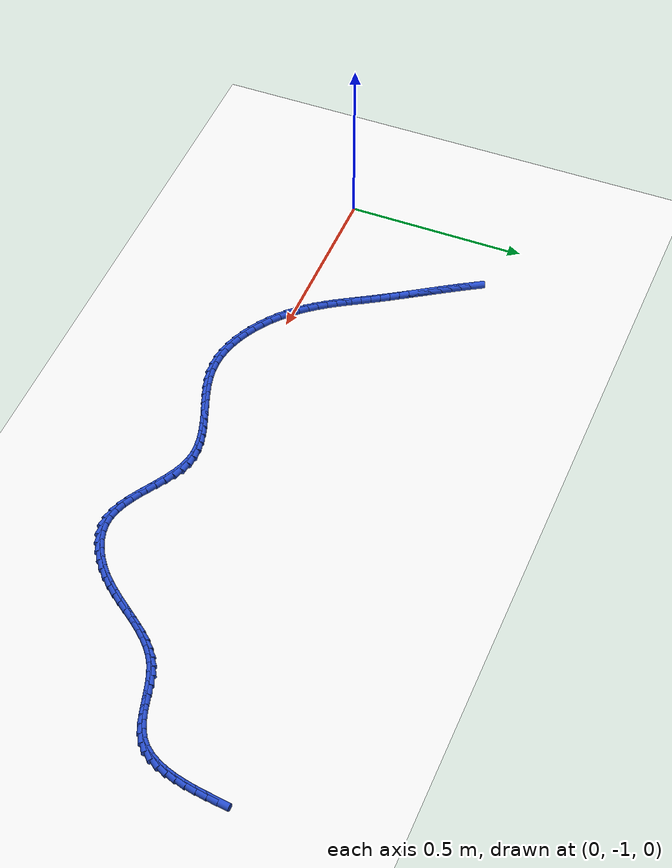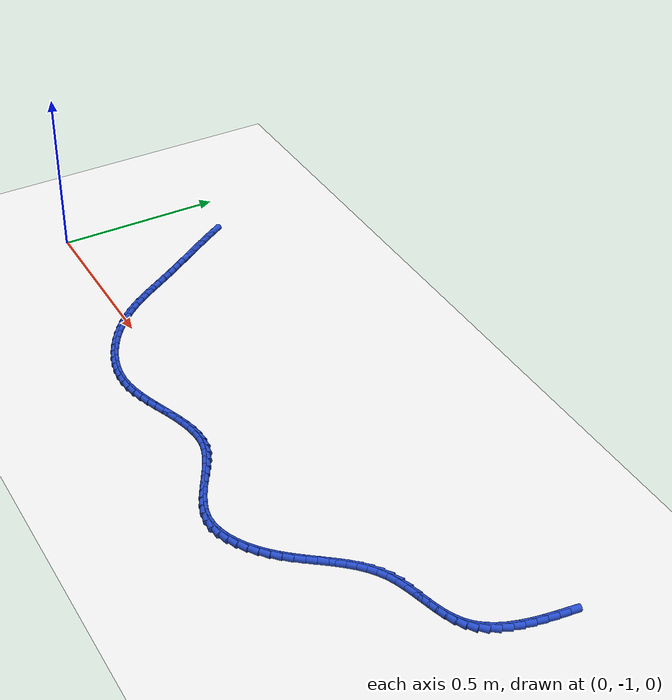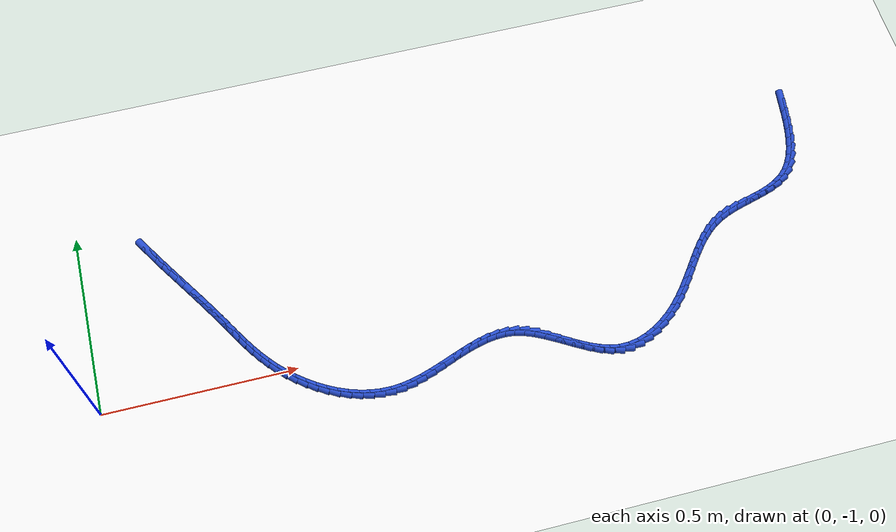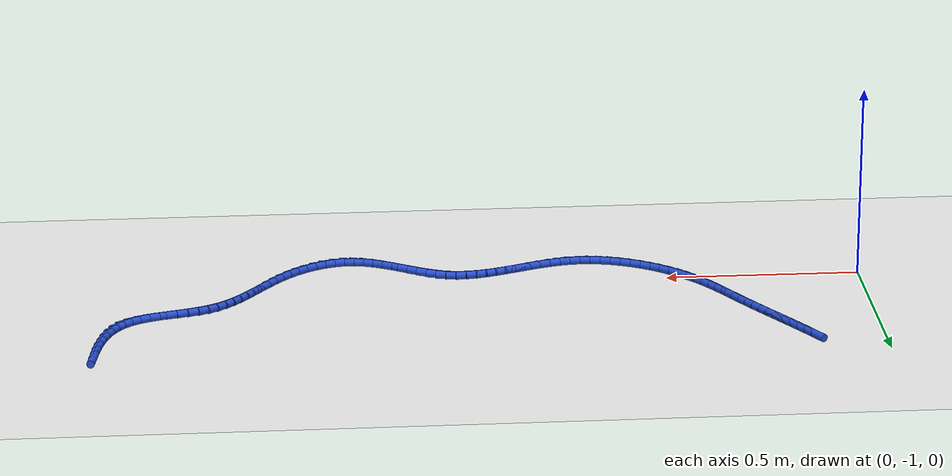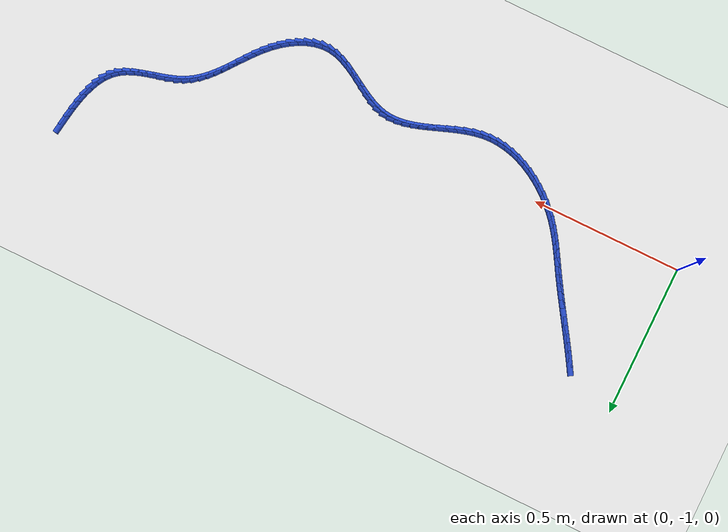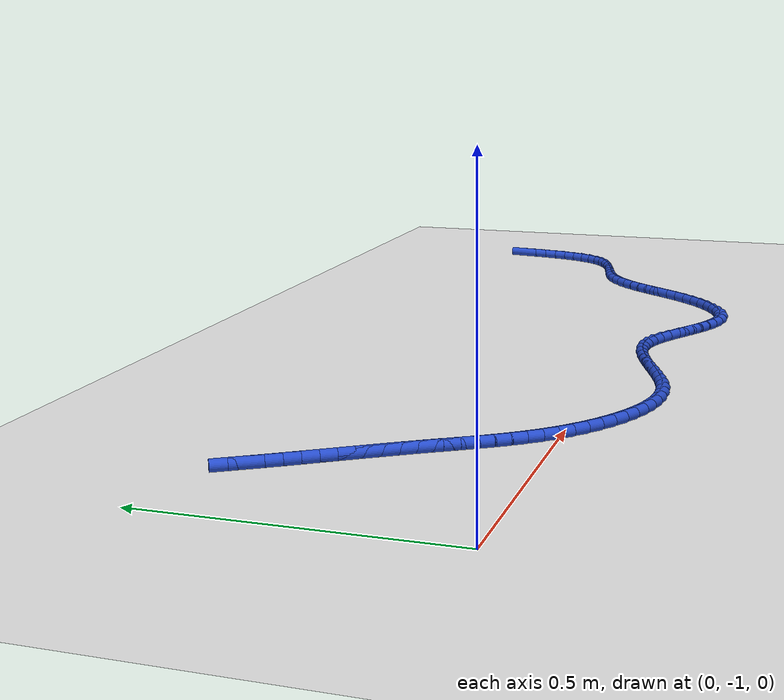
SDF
<sdf version="1.6">
 <world name="default">
  <model name="ground_plane">
   <static>1</static>
   <link name="link">
    <collision name="collision">
     <geometry><plane><normal>0 0 1</normal><size>100 100</size></plane></geometry>
     <surface><friction><ode><mu>100</mu><mu2>50</mu2></ode></friction></surface>
    </collision>
    <visual name="visual">
     <cast_shadows>0</cast_shadows>
     <geometry><plane><normal>0 0 1</normal><size>100 100</size></plane></geometry>
     <material>
      <script><uri>file://media/materials/scripts/gazebo.material</uri><name>Gazebo/WhiteGlow</name></script>
     </material>
    </visual>
   </link>
  </model>
  <model name="line">
   <link name="link_150">
    <pose>1.96478821360444 -0.5637196910142563 0.01 0 1.57 1.4319226730237735</pose>
    <collision name="collision">
     <geometry><cylinder><radius>0.01</radius><length>0.08</length></cylinder></geometry>
    </collision>
    <visual name="visual">
     <material>
      <script><name>Gazebo/Blue</name><uri>file://media/materials/scripts/gazebo.material</uri></script>
     </material>
     <geometry><cylinder><radius>0.01</radius><length>0.08</length></cylinder></geometry>
    </visual>
   </link>
   <link name="link_151">
    <pose>1.9607628551458993 -0.5925188726792422 0.01 0 1.57 1.4066659896583082</pose>
    <collision name="collision">
     <geometry><cylinder><radius>0.01</radius><length>0.08</length></cylinder></geometry>
    </collision>
    <visual name="visual">
     <material>
      <script><name>Gazebo/Blue</name><uri>file://media/materials/scripts/gazebo.material</uri></script>
     </material>
     <geometry><cylinder><radius>0.01</radius><length>0.08</length></cylinder></geometry>
    </visual>
   </link>
   <link name="link_152">
    <pose>1.955986293143293 -0.6213593252901358 0.01 0 1.57 1.368322378653813</pose>
    <collision name="collision">
     <geometry><cylinder><radius>0.01</radius><length>0.08</length></cylinder></geometry>
    </collision>
    <visual name="visual">
     <material>
      <script><name>Gazebo/Blue</name><uri>file://media/materials/scripts/gazebo.material</uri></script>
     </material>
     <geometry><cylinder><radius>0.01</radius><length>0.08</length></cylinder></geometry>
    </visual>
   </link>
   <link name="link_153">
    <pose>1.9501506916083324 -0.64978588550178 0.01 0 1.57 1.3151531855222545</pose>
    <collision name="collision">
     <geometry><cylinder><radius>0.01</radius><length>0.08</length></cylinder></geometry>
    </collision>
    <visual name="visual">
     <material>
      <script><name>Gazebo/Blue</name><uri>file://media/materials/scripts/gazebo.material</uri></script>
     </material>
     <geometry><cylinder><radius>0.01</radius><length>0.08</length></cylinder></geometry>
    </visual>
   </link>
   <link name="link_154">
    <pose>1.9429482145527304 -0.677343389969018 0.01 0 1.57 1.2444980330727031</pose>
    <collision name="collision">
     <geometry><cylinder><radius>0.01</radius><length>0.08</length></cylinder></geometry>
    </collision>
    <visual name="visual">
     <material>
      <script><name>Gazebo/Blue</name><uri>file://media/materials/scripts/gazebo.material</uri></script>
     </material>
     <geometry><cylinder><radius>0.01</radius><length>0.08</length></cylinder></geometry>
    </visual>
   </link>
   <link name="link_155">
    <pose>1.9340710259881968 -0.7035766753466927 0.01 0 1.57 1.1528679368372194</pose>
    <collision name="collision">
     <geometry><cylinder><radius>0.01</radius><length>0.08</length></cylinder></geometry>
    </collision>
    <visual name="visual">
     <material>
      <script><name>Gazebo/Blue</name><uri>file://media/materials/scripts/gazebo.material</uri></script>
     </material>
     <geometry><cylinder><radius>0.01</radius><length>0.08</length></cylinder></geometry>
    </visual>
   </link>
   <link name="link_156">
    <pose>1.9232112899264433 -0.7280305782896479 0.01 0 1.57 1.0364045912186703</pose>
    <collision name="collision">
     <geometry><cylinder><radius>0.01</radius><length>0.08</length></cylinder></geometry>
    </collision>
    <visual name="visual">
     <material>
      <script><name>Gazebo/Blue</name><uri>file://media/materials/scripts/gazebo.material</uri></script>
     </material>
     <geometry><cylinder><radius>0.01</radius><length>0.08</length></cylinder></geometry>
    </visual>
   </link>
   <link name="link_157">
    <pose>1.9100611703791817 -0.750249935452725 0.01 0 1.57 0.8921765646227691</pose>
    <collision name="collision">
     <geometry><cylinder><radius>0.01</radius><length>0.08</length></cylinder></geometry>
    </collision>
    <visual name="visual">
     <material>
      <script><name>Gazebo/Blue</name><uri>file://media/materials/scripts/gazebo.material</uri></script>
     </material>
     <geometry><cylinder><radius>0.01</radius><length>0.08</length></cylinder></geometry>
    </visual>
   </link>
   <link name="link_158">
    <pose>1.894312831358124 -0.7697795834907684 0.01 0 1.57 0.7208279984188549</pose>
    <collision name="collision">
     <geometry><cylinder><radius>0.01</radius><length>0.08</length></cylinder></geometry>
    </collision>
    <visual name="visual">
     <material>
      <script><name>Gazebo/Blue</name><uri>file://media/materials/scripts/gazebo.material</uri></script>
     </material>
     <geometry><cylinder><radius>0.01</radius><length>0.08</length></cylinder></geometry>
    </visual>
   </link>
   <link name="link_159">
    <pose>1.8756601867226104 -0.7861665641177377 0.01 0 1.57 0.5473461117396226</pose>
    <collision name="collision">
     <geometry><cylinder><radius>0.01</radius><length>0.08</length></cylinder></geometry>
    </collision>
    <visual name="visual">
     <material>
      <script><name>Gazebo/Blue</name><uri>file://media/materials/scripts/gazebo.material</uri></script>
     </material>
     <geometry><cylinder><radius>0.01</radius><length>0.08</length></cylinder></geometry>
    </visual>
   </link>
   <link name="link_160">
    <pose>1.8540823893280474 -0.7993173611145753 0.01 0 1.57 0.4162050129802272</pose>
    <collision name="collision">
     <geometry><cylinder><radius>0.01</radius><length>0.08</length></cylinder></geometry>
    </collision>
    <visual name="visual">
     <material>
      <script><name>Gazebo/Blue</name><uri>file://media/materials/scripts/gazebo.material</uri></script>
     </material>
     <geometry><cylinder><radius>0.01</radius><length>0.08</length></cylinder></geometry>
    </visual>
   </link>
   <link name="link_161">
    <pose>1.830157308355321 -0.8098929267484217 0.01 0 1.57 0.3293445437718518</pose>
    <collision name="collision">
     <geometry><cylinder><radius>0.01</radius><length>0.08</length></cylinder></geometry>
    </collision>
    <visual name="visual">
     <material>
      <script><name>Gazebo/Blue</name><uri>file://media/materials/scripts/gazebo.material</uri></script>
     </material>
     <geometry><cylinder><radius>0.01</radius><length>0.08</length></cylinder></geometry>
    </visual>
   </link>
   <link name="link_162">
    <pose>1.8045382865134916 -0.8186493207624065 0.01 0 1.57 0.2809418540501085</pose>
    <collision name="collision">
     <geometry><cylinder><radius>0.01</radius><length>0.08</length></cylinder></geometry>
    </collision>
    <visual name="visual">
     <material>
      <script><name>Gazebo/Blue</name><uri>file://media/materials/scripts/gazebo.material</uri></script>
     </material>
     <geometry><cylinder><radius>0.01</radius><length>0.08</length></cylinder></geometry>
    </visual>
   </link>
   <link name="link_163">
    <pose>1.7778786665116193 -0.8263426028996579 0.01 0 1.57 0.2665895916768753</pose>
    <collision name="collision">
     <geometry><cylinder><radius>0.01</radius><length>0.08</length></cylinder></geometry>
    </collision>
    <visual name="visual">
     <material>
      <script><name>Gazebo/Blue</name><uri>file://media/materials/scripts/gazebo.material</uri></script>
     </material>
     <geometry><cylinder><radius>0.01</radius><length>0.08</length></cylinder></geometry>
    </visual>
   </link>
   <link name="link_164">
    <pose>1.7508317910587634 -0.8337288329033049 0.01 0 1.57 0.2846258139274932</pose>
    <collision name="collision">
     <geometry><cylinder><radius>0.01</radius><length>0.08</length></cylinder></geometry>
    </collision>
    <visual name="visual">
     <material>
      <script><name>Gazebo/Blue</name><uri>file://media/materials/scripts/gazebo.material</uri></script>
     </material>
     <geometry><cylinder><radius>0.01</radius><length>0.08</length></cylinder></geometry>
    </visual>
   </link>
   <link name="link_165">
    <pose>1.7240510028639833 -0.8415640705164765 0.01 0 1.57 0.33628997065781197</pose>
    <collision name="collision">
     <geometry><cylinder><radius>0.01</radius><length>0.08</length></cylinder></geometry>
    </collision>
    <visual name="visual">
     <material>
      <script><name>Gazebo/Blue</name><uri>file://media/materials/scripts/gazebo.material</uri></script>
     </material>
     <geometry><cylinder><radius>0.01</radius><length>0.08</length></cylinder></geometry>
    </visual>
   </link>
   <link name="link_166">
    <pose>1.6981896446363414 -0.8506043754823015 0.01 0 1.57 0.425300625974785</pose>
    <collision name="collision">
     <geometry><cylinder><radius>0.01</radius><length>0.08</length></cylinder></geometry>
    </collision>
    <visual name="visual">
     <material>
      <script><name>Gazebo/Blue</name><uri>file://media/materials/scripts/gazebo.material</uri></script>
     </material>
     <geometry><cylinder><radius>0.01</radius><length>0.08</length></cylinder></geometry>
    </visual>
   </link>
   <link name="link_167">
    <pose>1.6739010407242285 -0.8616057870272057 0.01 0 1.57 0.5453772061243505</pose>
    <collision name="collision">
     <geometry><cylinder><radius>0.01</radius><length>0.08</length></cylinder></geometry>
    </collision>
    <visual name="visual">
     <material>
      <script><name>Gazebo/Blue</name><uri>file://media/materials/scripts/gazebo.material</uri></script>
     </material>
     <geometry><cylinder><radius>0.01</radius><length>0.08</length></cylinder></geometry>
    </visual>
   </link>
   <link name="link_168">
    <pose>1.6516460534413506 -0.8751092821247383 0.01 0 1.57 0.6583840965804758</pose>
    <collision name="collision">
     <geometry><cylinder><radius>0.01</radius><length>0.08</length></cylinder></geometry>
    </collision>
    <visual name="visual">
     <material>
      <script><name>Gazebo/Blue</name><uri>file://media/materials/scripts/gazebo.material</uri></script>
     </material>
     <geometry><cylinder><radius>0.01</radius><length>0.08</length></cylinder></geometry>
    </visual>
   </link>
   <link name="link_169">
    <pose>1.6312184565124892 -0.8909104150211274 0.01 0 1.57 0.7522094811264595</pose>
    <collision name="collision">
     <geometry><cylinder><radius>0.01</radius><length>0.08</length></cylinder></geometry>
    </collision>
    <visual name="visual">
     <material>
      <script><name>Gazebo/Blue</name><uri>file://media/materials/scripts/gazebo.material</uri></script>
     </material>
     <geometry><cylinder><radius>0.01</radius><length>0.08</length></cylinder></geometry>
    </visual>
   </link>
   <link name="link_170">
    <pose>1.612267590716508 -0.9086433467050221 0.01 0 1.57 0.8250850521182447</pose>
    <collision name="collision">
     <geometry><cylinder><radius>0.01</radius><length>0.08</length></cylinder></geometry>
    </collision>
    <visual name="visual">
     <material>
      <script><name>Gazebo/Blue</name><uri>file://media/materials/scripts/gazebo.material</uri></script>
     </material>
     <geometry><cylinder><radius>0.01</radius><length>0.08</length></cylinder></geometry>
    </visual>
   </link>
   <link name="link_171">
    <pose>1.5944427968322716 -0.9279422381650712 0.01 0 1.57 0.8770125884743273</pose>
    <collision name="collision">
     <geometry><cylinder><radius>0.01</radius><length>0.08</length></cylinder></geometry>
    </collision>
    <visual name="visual">
     <material>
      <script><name>Gazebo/Blue</name><uri>file://media/materials/scripts/gazebo.material</uri></script>
     </material>
     <geometry><cylinder><radius>0.01</radius><length>0.08</length></cylinder></geometry>
    </visual>
   </link>
   <link name="link_172">
    <pose>1.5773934156386427 -0.9484412503899243 0.01 0 1.57 0.908817302718389</pose>
    <collision name="collision">
     <geometry><cylinder><radius>0.01</radius><length>0.08</length></cylinder></geometry>
    </collision>
    <visual name="visual">
     <material>
      <script><name>Gazebo/Blue</name><uri>file://media/materials/scripts/gazebo.material</uri></script>
     </material>
     <geometry><cylinder><radius>0.01</radius><length>0.08</length></cylinder></geometry>
    </visual>
   </link>
   <link name="link_173">
    <pose>1.5607687879144871 -0.9697745443682293 0.01 0 1.57 0.9214723099640775</pose>
    <collision name="collision">
     <geometry><cylinder><radius>0.01</radius><length>0.08</length></cylinder></geometry>
    </collision>
    <visual name="visual">
     <material>
      <script><name>Gazebo/Blue</name><uri>file://media/materials/scripts/gazebo.material</uri></script>
     </material>
     <geometry><cylinder><radius>0.01</radius><length>0.08</length></cylinder></geometry>
    </visual>
   </link>
   <link name="link_174">
    <pose>1.544218254438669 -0.9915762810886362 0.01 0 1.57 0.9157433209176269</pose>
    <collision name="collision">
     <geometry><cylinder><radius>0.01</radius><length>0.08</length></cylinder></geometry>
    </collision>
    <visual name="visual">
     <material>
      <script><name>Gazebo/Blue</name><uri>file://media/materials/scripts/gazebo.material</uri></script>
     </material>
     <geometry><cylinder><radius>0.01</radius><length>0.08</length></cylinder></geometry>
    </visual>
   </link>
   <link name="link_175">
    <pose>1.5273911559900508 -1.0134806215397933 0.01 0 1.57 0.8920829229239977</pose>
    <collision name="collision">
     <geometry><cylinder><radius>0.01</radius><length>0.08</length></cylinder></geometry>
    </collision>
    <visual name="visual">
     <material>
      <script><name>Gazebo/Blue</name><uri>file://media/materials/scripts/gazebo.material</uri></script>
     </material>
     <geometry><cylinder><radius>0.01</radius><length>0.08</length></cylinder></geometry>
    </visual>
   </link>
   <link name="link_176">
    <pose>1.509936833347498 -1.0351217267103503 0.01 0 1.57 0.8507094949479546</pose>
    <collision name="collision">
     <geometry><cylinder><radius>0.01</radius><length>0.08</length></cylinder></geometry>
    </collision>
    <visual name="visual">
     <material>
      <script><name>Gazebo/Blue</name><uri>file://media/materials/scripts/gazebo.material</uri></script>
     </material>
     <geometry><cylinder><radius>0.01</radius><length>0.08</length></cylinder></geometry>
    </visual>
   </link>
   <link name="link_177">
    <pose>1.4915046272898749 -1.0561337575889558 0.01 0 1.57 0.7918430875702812</pose>
    <collision name="collision">
     <geometry><cylinder><radius>0.01</radius><length>0.08</length></cylinder></geometry>
    </collision>
    <visual name="visual">
     <material>
      <script><name>Gazebo/Blue</name><uri>file://media/materials/scripts/gazebo.material</uri></script>
     </material>
     <geometry><cylinder><radius>0.01</radius><length>0.08</length></cylinder></geometry>
    </visual>
   </link>
   <link name="link_178">
    <pose>1.4717438785960453 -1.076150875164259 0.01 0 1.57 0.7164188999579251</pose>
    <collision name="collision">
     <geometry><cylinder><radius>0.01</radius><length>0.08</length></cylinder></geometry>
    </collision>
    <visual name="visual">
     <material>
      <script><name>Gazebo/Blue</name><uri>file://media/materials/scripts/gazebo.material</uri></script>
     </material>
     <geometry><cylinder><radius>0.01</radius><length>0.08</length></cylinder></geometry>
    </visual>
   </link>
   <link name="link_179">
    <pose>1.4503234826854068 -1.0948027246658043 0.01 0 1.57 0.6307978964369275</pose>
    <collision name="collision">
     <geometry><cylinder><radius>0.01</radius><length>0.08</length></cylinder></geometry>
    </collision>
    <visual name="visual">
     <material>
      <script><name>Gazebo/Blue</name><uri>file://media/materials/scripts/gazebo.material</uri></script>
     </material>
     <geometry><cylinder><radius>0.01</radius><length>0.08</length></cylinder></geometry>
    </visual>
   </link>
   <link name="link_180">
    <pose>1.4272763917313125 -1.1116348795858573 0.01 0 1.57 0.5371588645237632</pose>
    <collision name="collision">
     <geometry><cylinder><radius>0.01</radius><length>0.08</length></cylinder></geometry>
    </collision>
    <visual name="visual">
     <material>
      <script><name>Gazebo/Blue</name><uri>file://media/materials/scripts/gazebo.material</uri></script>
     </material>
     <geometry><cylinder><radius>0.01</radius><length>0.08</length></cylinder></geometry>
    </visual>
   </link>
   <link name="link_181">
    <pose>1.4029575447418476 -1.126118556898691 0.01 0 1.57 0.4311568709884639</pose>
    <collision name="collision">
     <geometry><cylinder><radius>0.01</radius><length>0.08</length></cylinder></geometry>
    </collision>
    <visual name="visual">
     <material>
      <script><name>Gazebo/Blue</name><uri>file://media/materials/scripts/gazebo.material</uri></script>
     </material>
     <geometry><cylinder><radius>0.01</radius><length>0.08</length></cylinder></geometry>
    </visual>
   </link>
   <link name="link_182">
    <pose>1.377732981587685 -1.1377224100529924 0.01 0 1.57 0.30787548354314087</pose>
    <collision name="collision">
     <geometry><cylinder><radius>0.01</radius><length>0.08</length></cylinder></geometry>
    </collision>
    <visual name="visual">
     <material>
      <script><name>Gazebo/Blue</name><uri>file://media/materials/scripts/gazebo.material</uri></script>
     </material>
     <geometry><cylinder><radius>0.01</radius><length>0.08</length></cylinder></geometry>
    </visual>
   </link>
   <link name="link_183">
    <pose>1.3519687421394968 -1.1459150924974504 0.01 0 1.57 0.16241606086898988</pose>
    <collision name="collision">
     <geometry><cylinder><radius>0.01</radius><length>0.08</length></cylinder></geometry>
    </collision>
    <visual name="visual">
     <material>
      <script><name>Gazebo/Blue</name><uri>file://media/materials/scripts/gazebo.material</uri></script>
     </material>
     <geometry><cylinder><radius>0.01</radius><length>0.08</length></cylinder></geometry>
    </visual>
   </link>
   <link name="link_184">
    <pose>1.326030866267954 -1.1501652576807528 0.01 0 1.57 -0.008434688825568436</pose>
    <collision name="collision">
     <geometry><cylinder><radius>0.01</radius><length>0.08</length></cylinder></geometry>
    </collision>
    <visual name="visual">
     <material>
      <script><name>Gazebo/Blue</name><uri>file://media/materials/scripts/gazebo.material</uri></script>
     </material>
     <geometry><cylinder><radius>0.01</radius><length>0.08</length></cylinder></geometry>
    </visual>
   </link>
   <link name="link_185">
    <pose>1.3002833658081074 -1.1499480803760278 0.01 0 1.57 -0.18395710517132866</pose>
    <collision name="collision">
     <geometry><cylinder><radius>0.01</radius><length>0.08</length></cylinder></geometry>
    </collision>
    <visual name="visual">
     <material>
      <script><name>Gazebo/Blue</name><uri>file://media/materials/scripts/gazebo.material</uri></script>
     </material>
     <geometry><cylinder><radius>0.01</radius><length>0.08</length></cylinder></geometry>
    </visual>
   </link>
   <link name="link_186">
    <pose>1.2749368273928052 -1.145232087401158 0.01 0 1.57 -0.3248172365637459</pose>
    <collision name="collision">
     <geometry><cylinder><radius>0.01</radius><length>0.08</length></cylinder></geometry>
    </collision>
    <visual name="visual">
     <material>
      <script><name>Gazebo/Blue</name><uri>file://media/materials/scripts/gazebo.material</uri></script>
     </material>
     <geometry><cylinder><radius>0.01</radius><length>0.08</length></cylinder></geometry>
    </visual>
   </link>
   <link name="link_187">
    <pose>1.2499437209060427 -1.136815802367287 0.01 0 1.57 -0.4268195329785163</pose>
    <collision name="collision">
     <geometry><cylinder><radius>0.01</radius><length>0.08</length></cylinder></geometry>
    </collision>
    <visual name="visual">
     <material>
      <script><name>Gazebo/Blue</name><uri>file://media/materials/scripts/gazebo.material</uri></script>
     </material>
     <geometry><cylinder><radius>0.01</radius><length>0.08</length></cylinder></geometry>
    </visual>
   </link>
   <link name="link_188">
    <pose>1.2252317568737539 -1.1255773647488638 0.01 0 1.57 -0.49357644325399386</pose>
    <collision name="collision">
     <geometry><cylinder><radius>0.01</radius><length>0.08</length></cylinder></geometry>
    </collision>
    <visual name="visual">
     <material>
      <script><name>Gazebo/Blue</name><uri>file://media/materials/scripts/gazebo.material</uri></script>
     </material>
     <geometry><cylinder><radius>0.01</radius><length>0.08</length></cylinder></geometry>
    </visual>
   </link>
   <link name="link_189">
    <pose>1.2007286458218744 -1.1123949140203382 0.01 0 1.57 -0.5291303537994951</pose>
    <collision name="collision">
     <geometry><cylinder><radius>0.01</radius><length>0.08</length></cylinder></geometry>
    </collision>
    <visual name="visual">
     <material>
      <script><name>Gazebo/Blue</name><uri>file://media/materials/scripts/gazebo.material</uri></script>
     </material>
     <geometry><cylinder><radius>0.01</radius><length>0.08</length></cylinder></geometry>
    </visual>
   </link>
   <link name="link_190">
    <pose>1.1763620982763385 -1.0981465896561589 0.01 0 1.57 -0.5360115083940061</pose>
    <collision name="collision">
     <geometry><cylinder><radius>0.01</radius><length>0.08</length></cylinder></geometry>
    </collision>
    <visual name="visual">
     <material>
      <script><name>Gazebo/Blue</name><uri>file://media/materials/scripts/gazebo.material</uri></script>
     </material>
     <geometry><cylinder><radius>0.01</radius><length>0.08</length></cylinder></geometry>
    </visual>
   </link>
   <link name="link_191">
    <pose>1.15205982476308 -1.0837105311307744 0.01 0 1.57 -0.5146088933159381</pose>
    <collision name="collision">
     <geometry><cylinder><radius>0.01</radius><length>0.08</length></cylinder></geometry>
    </collision>
    <visual name="visual">
     <material>
      <script><name>Gazebo/Blue</name><uri>file://media/materials/scripts/gazebo.material</uri></script>
     </material>
     <geometry><cylinder><radius>0.01</radius><length>0.08</length></cylinder></geometry>
    </visual>
   </link>
   <link name="link_192">
    <pose>1.1277495358080338 -1.0699648779186344 0.01 0 1.57 -0.46305085646710314</pose>
    <collision name="collision">
     <geometry><cylinder><radius>0.01</radius><length>0.08</length></cylinder></geometry>
    </collision>
    <visual name="visual">
     <material>
      <script><name>Gazebo/Blue</name><uri>file://media/materials/scripts/gazebo.material</uri></script>
     </material>
     <geometry><cylinder><radius>0.01</radius><length>0.08</length></cylinder></geometry>
    </visual>
   </link>
   <link name="link_193">
    <pose>1.1033589419371346 -1.0577877694941875 0.01 0 1.57 -0.3774520504471772</pose>
    <collision name="collision">
     <geometry><cylinder><radius>0.01</radius><length>0.08</length></cylinder></geometry>
    </collision>
    <visual name="visual">
     <material>
      <script><name>Gazebo/Blue</name><uri>file://media/materials/scripts/gazebo.material</uri></script>
     </material>
     <geometry><cylinder><radius>0.01</radius><length>0.08</length></cylinder></geometry>
    </visual>
   </link>
   <link name="link_194">
    <pose>1.0788157536763163 -1.0480573453318827 0.01 0 1.57 -0.253096363479799</pose>
    <collision name="collision">
     <geometry><cylinder><radius>0.01</radius><length>0.08</length></cylinder></geometry>
    </collision>
    <visual name="visual">
     <material>
      <script><name>Gazebo/Blue</name><uri>file://media/materials/scripts/gazebo.material</uri></script>
     </material>
     <geometry><cylinder><radius>0.01</radius><length>0.08</length></cylinder></geometry>
    </visual>
   </link>
   <link name="link_195">
    <pose>1.0540477116235085 -1.0416512699227116 0.01 0 1.57 -0.10125311139131367</pose>
    <collision name="collision">
     <geometry><cylinder><radius>0.01</radius><length>0.08</length></cylinder></geometry>
    </collision>
    <visual name="visual">
     <material>
      <script><name>Gazebo/Blue</name><uri>file://media/materials/scripts/gazebo.material</uri></script>
     </material>
     <geometry><cylinder><radius>0.01</radius><length>0.08</length></cylinder></geometry>
    </visual>
   </link>
   <link name="link_196">
    <pose>1.0290041065346498 -1.0391068256605716 0.01 0 1.57 0.036157236147178584</pose>
    <collision name="collision">
     <geometry><cylinder><radius>0.01</radius><length>0.08</length></cylinder></geometry>
    </collision>
    <visual name="visual">
     <material>
      <script><name>Gazebo/Blue</name><uri>file://media/materials/scripts/gazebo.material</uri></script>
     </material>
     <geometry><cylinder><radius>0.01</radius><length>0.08</length></cylinder></geometry>
    </visual>
   </link>
   <link name="link_197">
    <pose>1.0036936734367534 -1.0400223799838682 0.01 0 1.57 0.1481112380569963</pose>
    <collision name="collision">
     <geometry><cylinder><radius>0.01</radius><length>0.08</length></cylinder></geometry>
    </collision>
    <visual name="visual">
     <material>
      <script><name>Gazebo/Blue</name><uri>file://media/materials/scripts/gazebo.material</uri></script>
     </material>
     <geometry><cylinder><radius>0.01</radius><length>0.08</length></cylinder></geometry>
    </visual>
   </link>
   <link name="link_198">
    <pose>0.9781353097512515 -1.043835786560213 0.01 0 1.57 0.23408283604956814</pose>
    <collision name="collision">
     <geometry><cylinder><radius>0.01</radius><length>0.08</length></cylinder></geometry>
    </collision>
    <visual name="visual">
     <material>
      <script><name>Gazebo/Blue</name><uri>file://media/materials/scripts/gazebo.material</uri></script>
     </material>
     <geometry><cylinder><radius>0.01</radius><length>0.08</length></cylinder></geometry>
    </visual>
   </link>
   <link name="link_199">
    <pose>0.9523479128995752 -1.049984899057218 0.01 0 1.57 0.29580620148675757</pose>
    <collision name="collision">
     <geometry><cylinder><radius>0.01</radius><length>0.08</length></cylinder></geometry>
    </collision>
    <visual name="visual">
     <material>
      <script><name>Gazebo/Blue</name><uri>file://media/materials/scripts/gazebo.material</uri></script>
     </material>
     <geometry><cylinder><radius>0.01</radius><length>0.08</length></cylinder></geometry>
    </visual>
   </link>
   <link name="link_200">
    <pose>0.9263503803031553 -1.0579075711424937 0.01 0 1.57 0.33558638292754983</pose>
    <collision name="collision">
     <geometry><cylinder><radius>0.01</radius><length>0.08</length></cylinder></geometry>
    </collision>
    <visual name="visual">
     <material>
      <script><name>Gazebo/Blue</name><uri>file://media/materials/scripts/gazebo.material</uri></script>
     </material>
     <geometry><cylinder><radius>0.01</radius><length>0.08</length></cylinder></geometry>
    </visual>
   </link>
   <link name="link_201">
    <pose>0.9001616093834236 -1.0670416564836518 0.01 0 1.57 0.35537191166396453</pose>
    <collision name="collision">
     <geometry><cylinder><radius>0.01</radius><length>0.08</length></cylinder></geometry>
    </collision>
    <visual name="visual">
     <material>
      <script><name>Gazebo/Blue</name><uri>file://media/materials/scripts/gazebo.material</uri></script>
     </material>
     <geometry><cylinder><radius>0.01</radius><length>0.08</length></cylinder></geometry>
    </visual>
   </link>
   <link name="link_202">
    <pose>0.8738004975618107 -1.0768250087483042 0.01 0 1.57 0.35637176620792205</pose>
    <collision name="collision">
     <geometry><cylinder><radius>0.01</radius><length>0.08</length></cylinder></geometry>
    </collision>
    <visual name="visual">
     <material>
      <script><name>Gazebo/Blue</name><uri>file://media/materials/scripts/gazebo.material</uri></script>
     </material>
     <geometry><cylinder><radius>0.01</radius><length>0.08</length></cylinder></geometry>
    </visual>
   </link>
   <link name="link_203">
    <pose>0.8472859422597483 -1.0866954816040615 0.01 0 1.57 0.3389549530617689</pose>
    <collision name="collision">
     <geometry><cylinder><radius>0.01</radius><length>0.08</length></cylinder></geometry>
    </collision>
    <visual name="visual">
     <material>
      <script><name>Gazebo/Blue</name><uri>file://media/materials/scripts/gazebo.material</uri></script>
     </material>
     <geometry><cylinder><radius>0.01</radius><length>0.08</length></cylinder></geometry>
    </visual>
   </link>
   <link name="link_204">
    <pose>0.820636840898667 -1.0960909287185359 0.01 0 1.57 0.3026905193983453</pose>
    <collision name="collision">
     <geometry><cylinder><radius>0.01</radius><length>0.08</length></cylinder></geometry>
    </collision>
    <visual name="visual">
     <material>
      <script><name>Gazebo/Blue</name><uri>file://media/materials/scripts/gazebo.material</uri></script>
     </material>
     <geometry><cylinder><radius>0.01</radius><length>0.08</length></cylinder></geometry>
    </visual>
   </link>
   <link name="link_205">
    <pose>0.7938720908999992 -1.104449203759338 0.01 0 1.57 0.24650508707966728</pose>
    <collision name="collision">
     <geometry><cylinder><radius>0.01</radius><length>0.08</length></cylinder></geometry>
    </collision>
    <visual name="visual">
     <material>
      <script><name>Gazebo/Blue</name><uri>file://media/materials/scripts/gazebo.material</uri></script>
     </material>
     <geometry><cylinder><radius>0.01</radius><length>0.08</length></cylinder></geometry>
    </visual>
   </link>
   <link name="link_206">
    <pose>0.767010589685176 -1.11120816039408 0.01 0 1.57 0.16903232691243006</pose>
    <collision name="collision">
     <geometry><cylinder><radius>0.01</radius><length>0.08</length></cylinder></geometry>
    </collision>
    <visual name="visual">
     <material>
      <script><name>Gazebo/Blue</name><uri>file://media/materials/scripts/gazebo.material</uri></script>
     </material>
     <geometry><cylinder><radius>0.01</radius><length>0.08</length></cylinder></geometry>
    </visual>
   </link>
   <link name="link_207">
    <pose>0.740071234675628 -1.1158056522903725 0.01 0 1.57 0.06979260228358979</pose>
    <collision name="collision">
     <geometry><cylinder><radius>0.01</radius><length>0.08</length></cylinder></geometry>
    </collision>
    <visual name="visual">
     <material>
      <script><name>Gazebo/Blue</name><uri>file://media/materials/scripts/gazebo.material</uri></script>
     </material>
     <geometry><cylinder><radius>0.01</radius><length>0.08</length></cylinder></geometry>
    </visual>
   </link>
   <link name="link_208">
    <pose>0.7130749161076464 -1.1176928608130052 0.01 0 1.57 -0.03793105711902369</pose>
    <collision name="collision">
     <geometry><cylinder><radius>0.01</radius><length>0.08</length></cylinder></geometry>
    </collision>
    <visual name="visual">
     <material>
      <script><name>Gazebo/Blue</name><uri>file://media/materials/scripts/gazebo.material</uri></script>
     </material>
     <geometry><cylinder><radius>0.01</radius><length>0.08</length></cylinder></geometry>
    </visual>
   </link>
   <link name="link_209">
    <pose>0.6860945600218973 -1.1166689762950173 0.01 0 1.57 -0.13931690948967085</pose>
    <collision name="collision">
     <geometry><cylinder><radius>0.01</radius><length>0.08</length></cylinder></geometry>
    </collision>
    <visual name="visual">
     <material>
      <script><name>Gazebo/Blue</name><uri>file://media/materials/scripts/gazebo.material</uri></script>
     </material>
     <geometry><cylinder><radius>0.01</radius><length>0.08</length></cylinder></geometry>
    </visual>
   </link>
   <link name="link_210">
    <pose>0.6592588258843334 -1.1129059272650725 0.01 0 1.57 -0.23332488269668056</pose>
    <collision name="collision">
     <geometry><cylinder><radius>0.01</radius><length>0.08</length></cylinder></geometry>
    </collision>
    <visual name="visual">
     <material>
      <script><name>Gazebo/Blue</name><uri>file://media/materials/scripts/gazebo.material</uri></script>
     </material>
     <geometry><cylinder><radius>0.01</radius><length>0.08</length></cylinder></geometry>
    </visual>
   </link>
   <link name="link_211">
    <pose>0.6326991065926141 -1.1065939231020976 0.01 0 1.57 -0.3201430093661807</pose>
    <collision name="collision">
     <geometry><cylinder><radius>0.01</radius><length>0.08</length></cylinder></geometry>
    </collision>
    <visual name="visual">
     <material>
      <script><name>Gazebo/Blue</name><uri>file://media/materials/scripts/gazebo.material</uri></script>
     </material>
     <geometry><cylinder><radius>0.01</radius><length>0.08</length></cylinder></geometry>
    </visual>
   </link>
   <link name="link_212">
    <pose>0.6065467950443988 -1.0979231731850199 0.01 0 1.57 -0.40033340430519787</pose>
    <collision name="collision">
     <geometry><cylinder><radius>0.01</radius><length>0.08</length></cylinder></geometry>
    </collision>
    <visual name="visual">
     <material>
      <script><name>Gazebo/Blue</name><uri>file://media/materials/scripts/gazebo.material</uri></script>
     </material>
     <geometry><cylinder><radius>0.01</radius><length>0.08</length></cylinder></geometry>
    </visual>
   </link>
   <link name="link_213">
    <pose>0.5809332841373466 -1.0870838868927666 0.01 0 1.57 -0.474681648166432</pose>
    <collision name="collision">
     <geometry><cylinder><radius>0.01</radius><length>0.08</length></cylinder></geometry>
    </collision>
    <visual name="visual">
     <material>
      <script><name>Gazebo/Blue</name><uri>file://media/materials/scripts/gazebo.material</uri></script>
     </material>
     <geometry><cylinder><radius>0.01</radius><length>0.08</length></cylinder></geometry>
    </visual>
   </link>
   <link name="link_214">
    <pose>0.5559899667691183 -1.0742662736042659 0.01 0 1.57 -0.544087367887223</pose>
    <collision name="collision">
     <geometry><cylinder><radius>0.01</radius><length>0.08</length></cylinder></geometry>
    </collision>
    <visual name="visual">
     <material>
      <script><name>Gazebo/Blue</name><uri>file://media/materials/scripts/gazebo.material</uri></script>
     </material>
     <geometry><cylinder><radius>0.01</radius><length>0.08</length></cylinder></geometry>
    </visual>
   </link>
   <link name="link_215">
    <pose>0.5318482358373731 -1.0596605426984451 0.01 0 1.57 -0.6094962869552265</pose>
    <collision name="collision">
     <geometry><cylinder><radius>0.01</radius><length>0.08</length></cylinder></geometry>
    </collision>
    <visual name="visual">
     <material>
      <script><name>Gazebo/Blue</name><uri>file://media/materials/scripts/gazebo.material</uri></script>
     </material>
     <geometry><cylinder><radius>0.01</radius><length>0.08</length></cylinder></geometry>
    </visual>
   </link>
   <link name="link_216">
    <pose>0.5086394842397702 -1.0434569035542314 0.01 0 1.57 -0.671866106880473</pose>
    <collision name="collision">
     <geometry><cylinder><radius>0.01</radius><length>0.08</length></cylinder></geometry>
    </collision>
    <visual name="visual">
     <material>
      <script><name>Gazebo/Blue</name><uri>file://media/materials/scripts/gazebo.material</uri></script>
     </material>
     <geometry><cylinder><radius>0.01</radius><length>0.08</length></cylinder></geometry>
    </visual>
   </link>
   <link name="link_217">
    <pose>0.4864951048739694 -1.0258455655505525 0.01 0 1.57 -0.7321573470699857</pose>
    <collision name="collision">
     <geometry><cylinder><radius>0.01</radius><length>0.08</length></cylinder></geometry>
    </collision>
    <visual name="visual">
     <material>
      <script><name>Gazebo/Blue</name><uri>file://media/materials/scripts/gazebo.material</uri></script>
     </material>
     <geometry><cylinder><radius>0.01</radius><length>0.08</length></cylinder></geometry>
    </visual>
   </link>
   <link name="link_218">
    <pose>0.46554649063763043 -1.0070167380663364 0.01 0 1.57 -0.7913420107549631</pose>
    <collision name="collision">
     <geometry><cylinder><radius>0.01</radius><length>0.08</length></cylinder></geometry>
    </collision>
    <visual name="visual">
     <material>
      <script><name>Gazebo/Blue</name><uri>file://media/materials/scripts/gazebo.material</uri></script>
     </material>
     <geometry><cylinder><radius>0.01</radius><length>0.08</length></cylinder></geometry>
    </visual>
   </link>
   <link name="link_219">
    <pose>0.4459250344284124 -0.9871606304805096 0.01 0 1.57 -0.8502132358635229</pose>
    <collision name="collision">
     <geometry><cylinder><radius>0.01</radius><length>0.08</length></cylinder></geometry>
    </collision>
    <visual name="visual">
     <material>
      <script><name>Gazebo/Blue</name><uri>file://media/materials/scripts/gazebo.material</uri></script>
     </material>
     <geometry><cylinder><radius>0.01</radius><length>0.08</length></cylinder></geometry>
    </visual>
   </link>
   <link name="link_220">
    <pose>0.42775295673087443 -0.966465861720522 0.01 0 1.57 -0.9049909579517258</pose>
    <collision name="collision">
     <geometry><cylinder><radius>0.01</radius><length>0.08</length></cylinder></geometry>
    </collision>
    <visual name="visual">
     <material>
      <script><name>Gazebo/Blue</name><uri>file://media/materials/scripts/gazebo.material</uri></script>
     </material>
     <geometry><cylinder><radius>0.01</radius><length>0.08</length></cylinder></geometry>
    </visual>
   </link>
   <link name="link_221">
    <pose>0.41096170867043497 -0.9450879722419069 0.01 0 1.57 -0.9508466920844393</pose>
    <collision name="collision">
     <geometry><cylinder><radius>0.01</radius><length>0.08</length></cylinder></geometry>
    </collision>
    <visual name="visual">
     <material>
      <script><name>Gazebo/Blue</name><uri>file://media/materials/scripts/gazebo.material</uri></script>
     </material>
     <geometry><cylinder><radius>0.01</radius><length>0.08</length></cylinder></geometry>
    </visual>
   </link>
   <link name="link_222">
    <pose>0.3953025600795272 -0.9231512599470598 0.01 0 1.57 -0.9868939479741279</pose>
    <collision name="collision">
     <geometry><cylinder><radius>0.01</radius><length>0.08</length></cylinder></geometry>
    </collision>
    <visual name="visual">
     <material>
      <script><name>Gazebo/Blue</name><uri>file://media/materials/scripts/gazebo.material</uri></script>
     </material>
     <geometry><cylinder><radius>0.01</radius><length>0.08</length></cylinder></geometry>
    </visual>
   </link>
   <link name="link_223">
    <pose>0.3805197281554369 -0.9007787998460065 0.01 0 1.57 -1.012701505118379</pose>
    <collision name="collision">
     <geometry><cylinder><radius>0.01</radius><length>0.08</length></cylinder></geometry>
    </collision>
    <visual name="visual">
     <material>
      <script><name>Gazebo/Blue</name><uri>file://media/materials/scripts/gazebo.material</uri></script>
     </material>
     <geometry><cylinder><radius>0.01</radius><length>0.08</length></cylinder></geometry>
    </visual>
   </link>
   <link name="link_224">
    <pose>0.36635743009544924 -0.8780936669487722 0.01 0 1.57 -1.028042930837068</pose>
    <collision name="collision">
     <geometry><cylinder><radius>0.01</radius><length>0.08</length></cylinder></geometry>
    </collision>
    <visual name="visual">
     <material>
      <script><name>Gazebo/Blue</name><uri>file://media/materials/scripts/gazebo.material</uri></script>
     </material>
     <geometry><cylinder><radius>0.01</radius><length>0.08</length></cylinder></geometry>
    </visual>
   </link>
   <link name="link_225">
    <pose>0.35255988309685 -0.8552189362653833 0.01 0 1.57 -1.032821848167294</pose>
    <collision name="collision">
     <geometry><cylinder><radius>0.01</radius><length>0.08</length></cylinder></geometry>
    </collision>
    <visual name="visual">
     <material>
      <script><name>Gazebo/Blue</name><uri>file://media/materials/scripts/gazebo.material</uri></script>
     </material>
     <geometry><cylinder><radius>0.01</radius><length>0.08</length></cylinder></geometry>
    </visual>
   </link>
   <link name="link_226">
    <pose>0.33887130435692453 -0.8322776828058649 0.01 0 1.57 -1.0272062916832498</pose>
    <collision name="collision">
     <geometry><cylinder><radius>0.01</radius><length>0.08</length></cylinder></geometry>
    </collision>
    <visual name="visual">
     <material>
      <script><name>Gazebo/Blue</name><uri>file://media/materials/scripts/gazebo.material</uri></script>
     </material>
     <geometry><cylinder><radius>0.01</radius><length>0.08</length></cylinder></geometry>
    </visual>
   </link>
   <link name="link_227">
    <pose>0.3250403334384526 -0.8093908558727594 0.01 0 1.57 -1.0168517058042381</pose>
    <collision name="collision">
     <geometry><cylinder><radius>0.01</radius><length>0.08</length></cylinder></geometry>
    </collision>
    <visual name="visual">
     <material>
      <script><name>Gazebo/Blue</name><uri>file://media/materials/scripts/gazebo.material</uri></script>
     </material>
     <geometry><cylinder><radius>0.01</radius><length>0.08</length></cylinder></geometry>
    </visual>
   </link>
   <link name="link_228">
    <pose>0.3109517762010227 -0.786613953435708 0.01 0 1.57 -1.0083106237451898</pose>
    <collision name="collision">
     <geometry><cylinder><radius>0.01</radius><length>0.08</length></cylinder></geometry>
    </collision>
    <visual name="visual">
     <material>
      <script><name>Gazebo/Blue</name><uri>file://media/materials/scripts/gazebo.material</uri></script>
     </material>
     <geometry><cylinder><radius>0.01</radius><length>0.08</length></cylinder></geometry>
    </visual>
   </link>
   <link name="link_229">
    <pose>0.29664903926129954 -0.7639262385134648 0.01 0 1.57 -1.0019383303869736</pose>
    <collision name="collision">
     <geometry><cylinder><radius>0.01</radius><length>0.08</length></cylinder></geometry>
    </collision>
    <visual name="visual">
     <material>
      <script><name>Gazebo/Blue</name><uri>file://media/materials/scripts/gazebo.material</uri></script>
     </material>
     <geometry><cylinder><radius>0.01</radius><length>0.08</length></cylinder></geometry>
    </visual>
   </link>
   <link name="link_230">
    <pose>0.2821844712354073 -0.7413026759555826 0.01 0 1.57 -0.997722621762508</pose>
    <collision name="collision">
     <geometry><cylinder><radius>0.01</radius><length>0.08</length></cylinder></geometry>
    </collision>
    <visual name="visual">
     <material>
      <script><name>Gazebo/Blue</name><uri>file://media/materials/scripts/gazebo.material</uri></script>
     </material>
     <geometry><cylinder><radius>0.01</radius><length>0.08</length></cylinder></geometry>
    </visual>
   </link>
   <link name="link_231">
    <pose>0.26761042073946956 -0.7187182306116136 0.01 0 1.57 -0.9956539921724872</pose>
    <collision name="collision">
     <geometry><cylinder><radius>0.01</radius><length>0.08</length></cylinder></geometry>
    </collision>
    <visual name="visual">
     <material>
      <script><name>Gazebo/Blue</name><uri>file://media/materials/scripts/gazebo.material</uri></script>
     </material>
     <geometry><cylinder><radius>0.01</radius><length>0.08</length></cylinder></geometry>
    </visual>
   </link>
   <link name="link_232">
    <pose>0.25297923638960956 -0.6961478673311092 0.01 0 1.57 -0.995726182489384</pose>
    <collision name="collision">
     <geometry><cylinder><radius>0.01</radius><length>0.08</length></cylinder></geometry>
    </collision>
    <visual name="visual">
     <material>
      <script><name>Gazebo/Blue</name><uri>file://media/materials/scripts/gazebo.material</uri></script>
     </material>
     <geometry><cylinder><radius>0.01</radius><length>0.08</length></cylinder></geometry>
    </visual>
   </link>
   <link name="link_233">
    <pose>0.23834326680195098 -0.6735665509636218 0.01 0 1.57 -0.9979364374295845</pose>
    <collision name="collision">
     <geometry><cylinder><radius>0.01</radius><length>0.08</length></cylinder></geometry>
    </collision>
    <visual name="visual">
     <material>
      <script><name>Gazebo/Blue</name><uri>file://media/materials/scripts/gazebo.material</uri></script>
     </material>
     <geometry><cylinder><radius>0.01</radius><length>0.08</length></cylinder></geometry>
    </visual>
   </link>
   <link name="link_234">
    <pose>0.2237548605926175 -0.6509492463587035 0.01 0 1.57 -1.0022854806491974</pose>
    <collision name="collision">
     <geometry><cylinder><radius>0.01</radius><length>0.08</length></cylinder></geometry>
    </collision>
    <visual name="visual">
     <material>
      <script><name>Gazebo/Blue</name><uri>file://media/materials/scripts/gazebo.material</uri></script>
     </material>
     <geometry><cylinder><radius>0.01</radius><length>0.08</length></cylinder></geometry>
    </visual>
   </link>
   <link name="link_235">
    <pose>0.20926636637773252 -0.6282709183659058 0.01 0 1.57 -1.0087772100940007</pose>
    <collision name="collision">
     <geometry><cylinder><radius>0.01</radius><length>0.08</length></cylinder></geometry>
    </collision>
    <visual name="visual">
     <material>
      <script><name>Gazebo/Blue</name><uri>file://media/materials/scripts/gazebo.material</uri></script>
     </material>
     <geometry><cylinder><radius>0.01</radius><length>0.08</length></cylinder></geometry>
    </visual>
   </link>
   <link name="link_236">
    <pose>0.19493013277341936 -0.6055065318347804 0.01 0 1.57 -1.0174181097394615</pose>
    <collision name="collision">
     <geometry><cylinder><radius>0.01</radius><length>0.08</length></cylinder></geometry>
    </collision>
    <visual name="visual">
     <material>
      <script><name>Gazebo/Blue</name><uri>file://media/materials/scripts/gazebo.material</uri></script>
     </material>
     <geometry><cylinder><radius>0.01</radius><length>0.08</length></cylinder></geometry>
    </visual>
   </link>
   <link name="link_237">
    <pose>0.1807985083958024 -0.5826310516148809 0.01 0 1.57 -1.028216368571588</pose>
    <collision name="collision">
     <geometry><cylinder><radius>0.01</radius><length>0.08</length></cylinder></geometry>
    </collision>
    <visual name="visual">
     <material>
      <script><name>Gazebo/Blue</name><uri>file://media/materials/scripts/gazebo.material</uri></script>
     </material>
     <geometry><cylinder><radius>0.01</radius><length>0.08</length></cylinder></geometry>
    </visual>
   </link>
  </model>
 </world>
</sdf>
